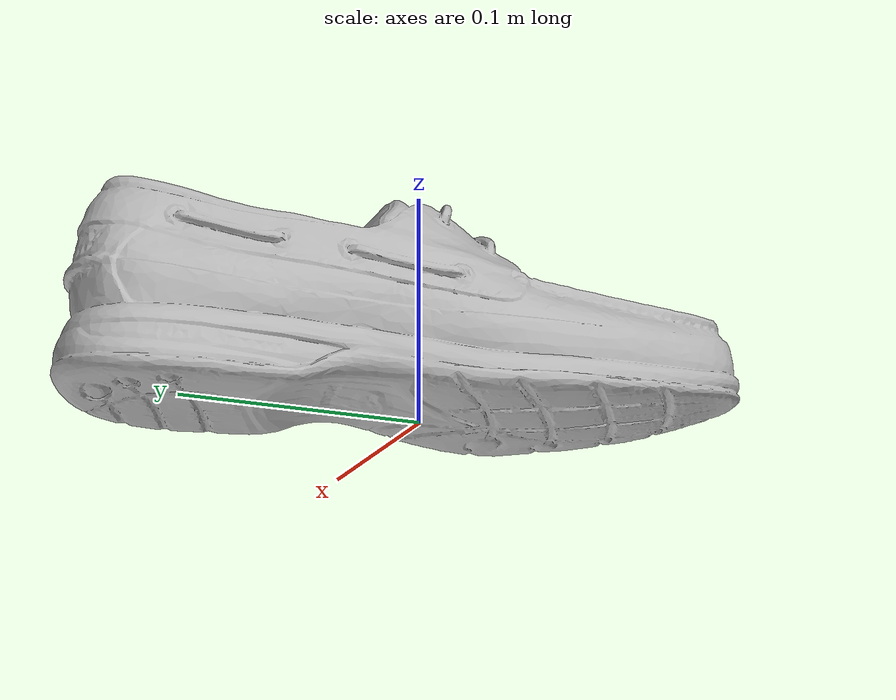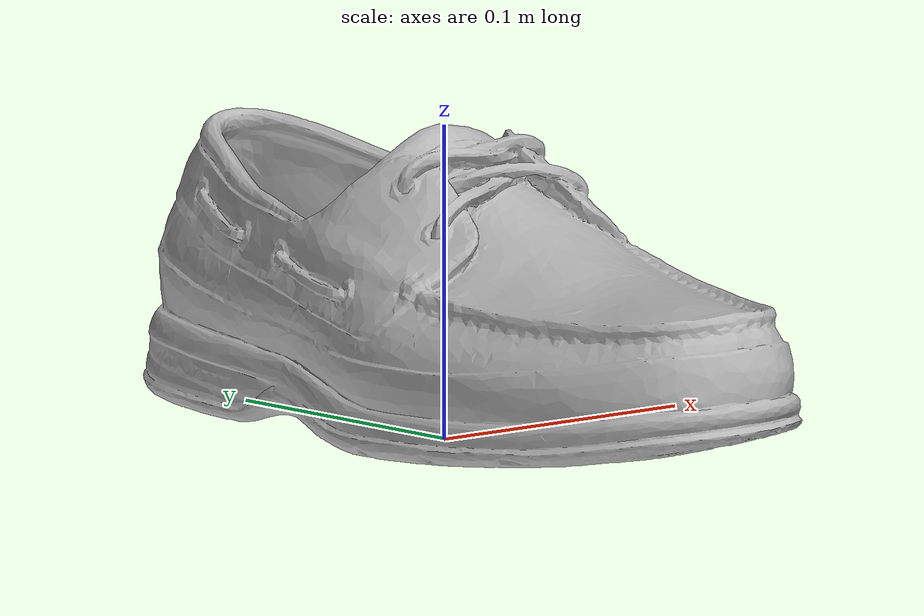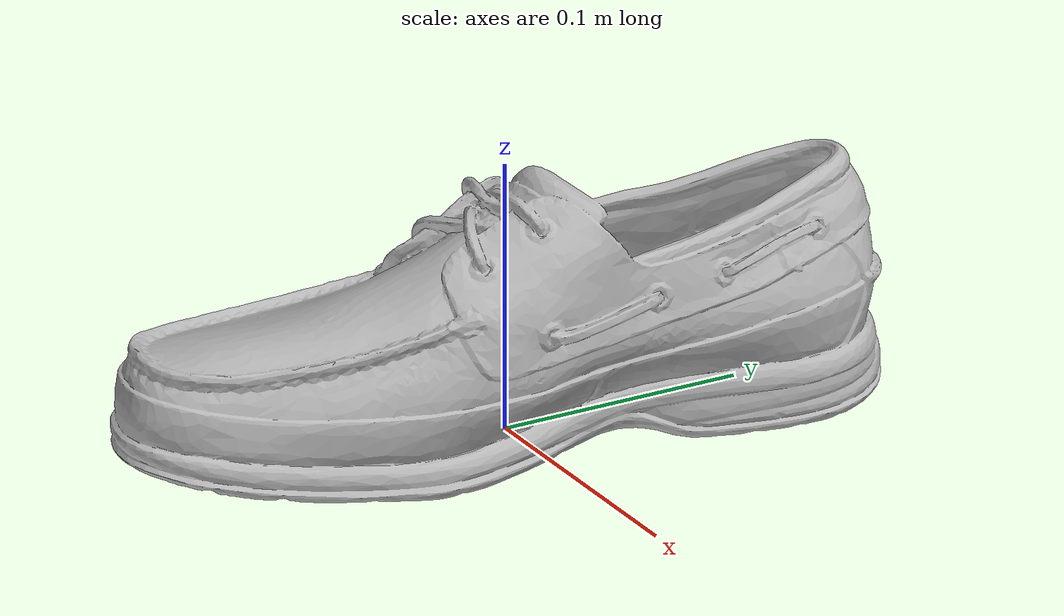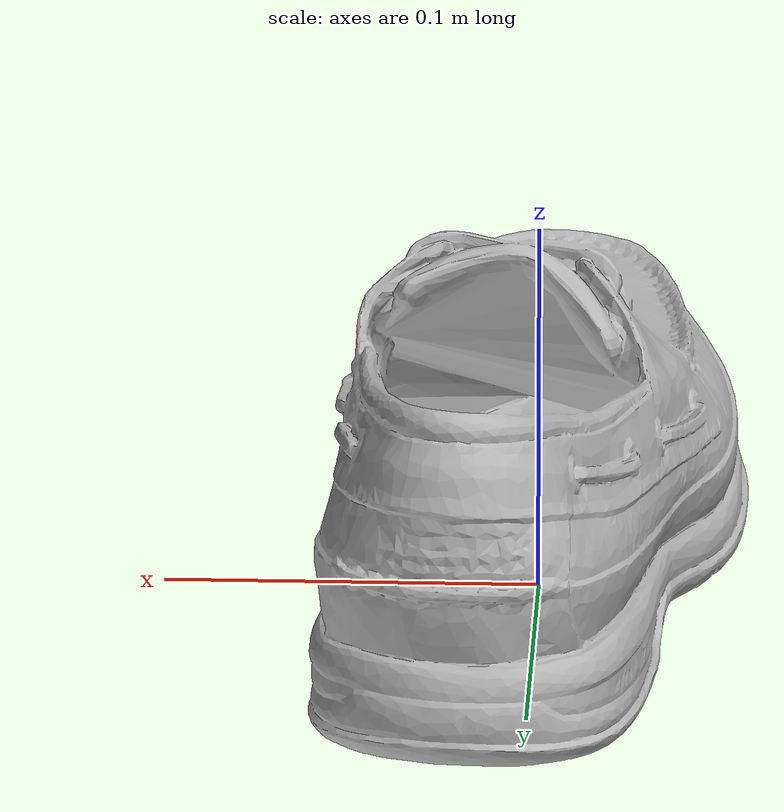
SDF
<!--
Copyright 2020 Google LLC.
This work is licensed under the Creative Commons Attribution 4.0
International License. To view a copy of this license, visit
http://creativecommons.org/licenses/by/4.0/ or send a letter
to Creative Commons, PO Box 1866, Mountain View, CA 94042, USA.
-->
<?xml version="1.0" ?>
<sdf version="1.6">
  <model name="Mens_Gold_Cup_ASV_2Eye_Boat_Shoe_in_Cognac_Leather">
    <link name="link_0">
      <visual name="visual">
        <geometry>
          <mesh>
            <uri>meshes/model.obj</uri>
          </mesh>
        </geometry>
      </visual>
      <collision name="collision_0">
        <geometry>
          <mesh>
            <uri>meshes/model.obj</uri>
          </mesh>
        </geometry>
      </collision>
    </link>
  </model>
</sdf>
